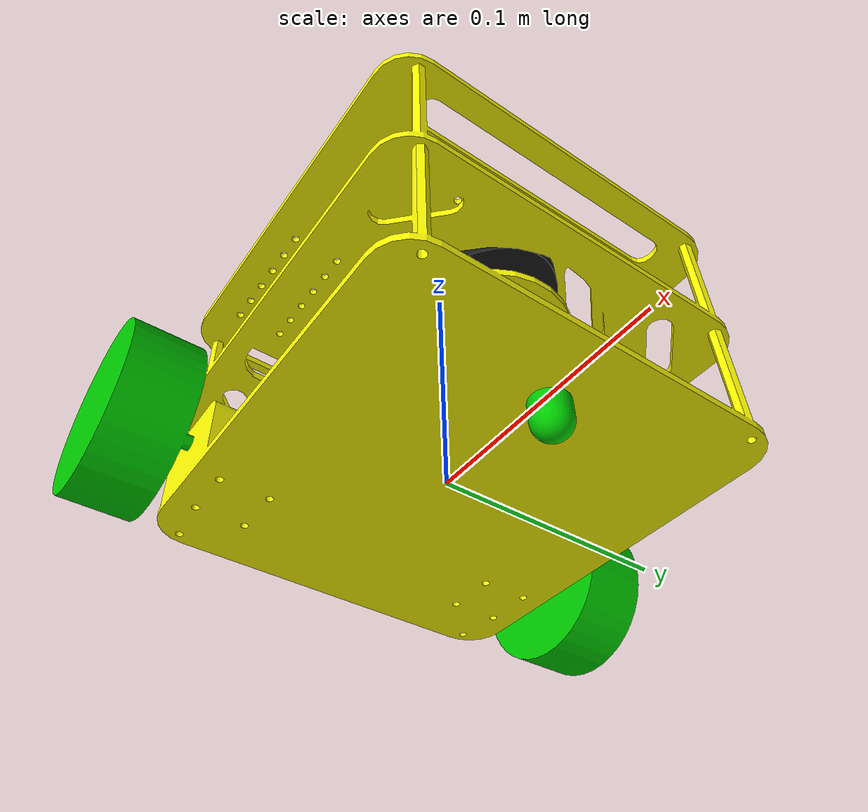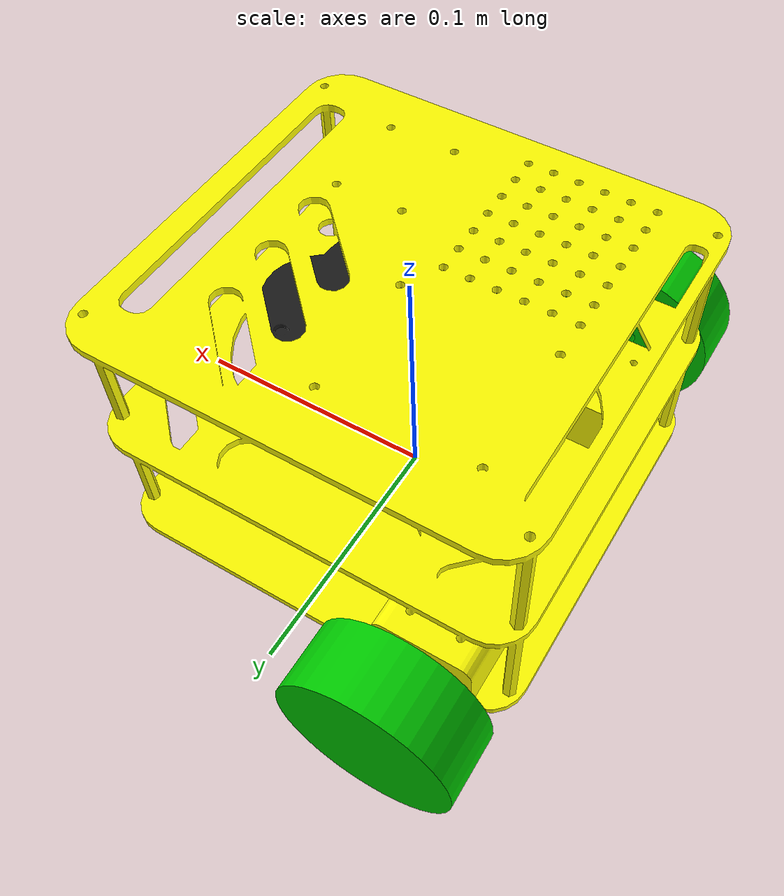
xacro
<?xml version="1.0"?>
<robot xmlns:xacro="http://www.ros.org/wiki/xacro" name="mecanum_car">

<!-- ======================================= Model include  ====================================-->

<!-- Base -->
<xacro:include filename="$(find rham_description)/xacro/model/base/base.xacro"/>

<!-- Wheel -->
<xacro:include filename="$(find rham_description)/xacro/model/wheel/wheel.xacro"/>

<!-- RplidarA1 -->
<xacro:include filename="$(find rham_description)/xacro/model/sensor/rplidarA1/rplidarA1.xacro"/>

<!-- ======================================= Gazebo include  ====================================-->

<!-- Base -->
<xacro:include filename="$(find rham_description)/xacro/gazebo/base/base.xacro"/>

<!-- Wheel -->
<xacro:include filename="$(find rham_description)/xacro/gazebo/wheel/wheel.xacro"/>

<!-- RplidarA1 -->
<xacro:include filename="$(find rham_description)/xacro/gazebo/sensor/rplidarA1/rplidarA1.xacro"/>

<!-- Plugin -->
<xacro:include filename="$(find rham_description)/xacro/gazebo/plugin/plugin.xacro"/>

<!-- ======================================= Model Macro  ====================================-->

<!-- Base -->
<xacro:base/>

<!-- Wheel -->
<xacro:wheel/>

<!-- RplidarA1 -->
<xacro:rplidarA1/>

<!-- ======================================= Gazebo Macro  ====================================-->

<!-- Base -->
<xacro:gazebo_base/>

<!-- Wheel -->
<xacro:gazebo_wheel/>

<!-- RplidarA1 -->
<xacro:gazebo_rplidarA1/>

<!-- Plugin -->
<xacro:gazebo_plugin/>

</robot>

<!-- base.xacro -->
<robot xmlns:xacro="http://www.ros.org/wiki/xacro">
    <xacro:macro name="base">

        <link name="basefoot_link">
            <inertial>
                <origin xyz="-0.0144145743589182 -0.000274313076569756 0.0386925952322384" rpy="0 0 0" />
                <mass value="0.286709642035174" />
                <inertia ixx="0.000455635294970899" ixy="4.80014762382226E-06" ixz="2.06034221124651E-21" iyy="0.000503838101926631" iyz="-2.44158544404845E-21" izz="0.000949529356246916" />
            </inertial>
            <visual>
                <origin xyz="0 0 0" rpy="0 0 0" />
                <geometry>
                    <mesh filename="package://rham_description/meshes/basefoot_link.STL" />
                </geometry>
                <material name="brightyellow">
                    <color rgba="1.0 0.9921568627450981 0.00392156862745098 1.0" />
                </material>
            </visual>
            <collision>
                <origin xyz="0 0 0" rpy="0 0 0" />
                <geometry>
                    <mesh filename="package://rham_description/meshes/basefoot_link.STL" />
                </geometry>
            </collision>
        </link>

    </xacro:macro>

</robot>

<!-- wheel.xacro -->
<robot xmlns:xacro="http://www.ros.org/wiki/xacro">

    <xacro:macro name="wheel">

        <link name="left_motor_link">
            <inertial>
                <origin xyz="-6.93889390390723E-18 -0.013634747706422 0" rpy="0 0 0" />
                <mass value="0.0986208765814908" />
                <inertia ixx="3.46254938837746E-05" ixy="8.08369757275774E-23" ixz="4.95401915443896E-22" iyy="5.66785600544717E-05" iyz="9.10504727518394E-22" izz="3.46254938837746E-05" />
            </inertial>
            <visual>
                <origin xyz="0 0 0" rpy="0 0 0" />
                <geometry>
                    <mesh filename="package://rham_description/meshes/left_motor_link.STL" />
                </geometry>
                <material name="Green">
                    <color rgba="0.0 0.8 0.0 1.0"/>
                </material>
            </visual>
            <collision>
                <origin xyz="0 0 0" rpy="0 0 0" />
                <geometry>
                    <mesh filename="package://rham_description/meshes/left_motor_link.STL" />
                </geometry>
            </collision>
        </link>

        <joint name="left_motor_link_jt" type="continuous">
            <origin xyz="-0.051108 0.117 0.016" rpy="0 0 0" />
            <parent link="basefoot_link" />
            <child link="left_motor_link" />
            <axis xyz="0 1 0" />
        </joint>

        <link name="right_motor_link">
            <inertial>
                <origin xyz="6.93889390390723E-18 0.013634747706422 0" rpy="0 0 0" />
                <mass value="0.0986208765814908" />
                <inertia ixx="3.46254938837746E-05" ixy="-9.29432687482328E-22" ixz="2.27226756606387E-22" iyy="5.66785600544717E-05" iyz="4.98729854505524E-23" izz="3.46254938837746E-05" />
            </inertial>
            <visual>
                <origin xyz="0 0 0" rpy="0 0 0" />
                <geometry>
                    <mesh filename="package://rham_description/meshes/right_motor_link.STL" />
                </geometry>
                <material name="Green">
                    <color rgba="0.0 0.8 0.0 1.0"/>
                </material>
            </visual>
            <collision>
                <origin xyz="0 0 0" rpy="0 0 0" />
                <geometry>
                    <mesh filename="package://rham_description/meshes/right_motor_link.STL" />
                </geometry>
            </collision>
        </link>

        <joint name="right_motor_link_jt" type="continuous">
            <origin xyz="-0.051108 -0.117 0.016" rpy="0 0 0" />
            <parent link="basefoot_link" />
            <child link="right_motor_link" />
            <axis xyz="0 1 0" />
        </joint>

            <link name="caster_link">
                <inertial>
                    <origin xyz="0 -6.93889390390723E-18 0.00482774636510501" rpy="0 0 0" />
                    <mass value="0.00218772658414359" />
                    <inertia ixx="6.00363809142504E-08" ixy="-1.83934595193676E-25" ixz="-2.43174756024737E-24" iyy="6.00363809142504E-08" iyz="-1.24236334383657E-25" izz="5.71322676874058E-08" />
                </inertial>
                <visual>
                    <origin xyz="0 0 0" rpy="0 0 0" />
                    <geometry>
                        <mesh filename="package://rham_description/meshes/caster_link.STL" />
                    </geometry>
                    <material name="Green">
                        <color rgba="0.0 0.8 0.0 1.0"/>
                    </material>
                </visual>
                <collision>
                    <origin xyz="0 0 0" rpy="0 0 0" />
                    <geometry>
                        <mesh filename="package://rham_description/meshes/caster_link.STL" />
                    </geometry>
                </collision>
            </link>

            <joint name="caster_link_jt" type="continuous">
                <origin xyz="0.054892 0 -0.01425" rpy="0 0 0" />
                <parent link="basefoot_link" />
                <child link="caster_link" />
                <axis xyz="0 0 1" />
            </joint>

        </xacro:macro>

    </robot>

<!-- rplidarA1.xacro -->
<robot xmlns:xacro="http://www.ros.org/wiki/xacro">
    <xacro:macro name="rplidarA1">
        <link name="laser_link">
            <inertial>
                <origin xyz="0.00149239831069729 0.000430205916664227 -0.0174246639655813" rpy="0 0 0" />
                <mass value="0.129722713096946" />
                <inertia ixx="4.39659525903753E-05" ixy="-1.12117402106385E-06" ixz="-1.45144638008786E-07" iyy="5.34581954301131E-05" iyz="-1.57444487872166E-07" izz="8.85145581368939E-05" />
            </inertial>
            <visual>
                <origin xyz="0 0 0" rpy="0 0 0" />
                <geometry>
                    <mesh filename="package://rham_description/meshes/laser_link.STL" />
                </geometry>
                <material name="Black">
                    <color rgba="0.1 0.1 0.1 1.0"/>
                </material>
            </visual>
            <collision>
                <origin xyz="0 0 0" rpy="0 0 0" />
                <geometry>
                    <mesh filename="package://rham_description/meshes/laser_link.STL" />
                </geometry>
            </collision>
        </link>
        <joint name="laser_link_jt" type="fixed">
            <origin xyz="-0.00010752 0 0.0976" rpy="0 0 0" />
            <parent link="basefoot_link" />
            <child link="laser_link" />
            <axis xyz="0 0 0" />
        </joint>
    </xacro:macro>
</robot>
